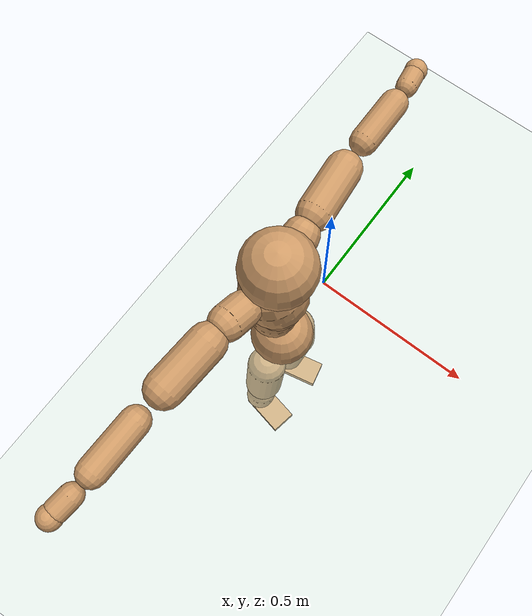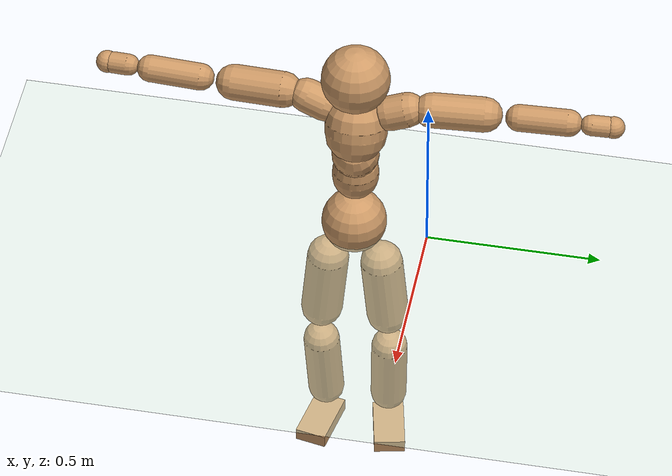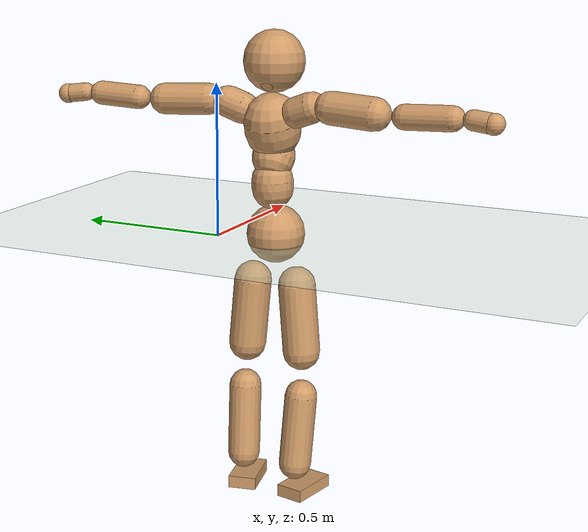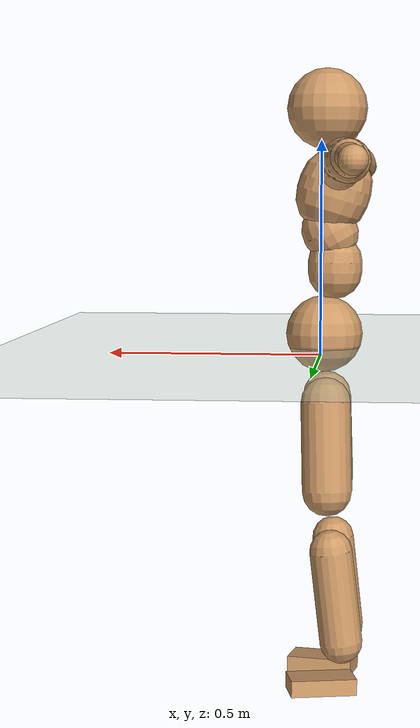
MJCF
<mujoco model="humanoid">
  <compiler coordinate="local"/>
  <default>
    <joint damping="0.0" armature="0.01" stiffness="0.0" limited="true"/>
    <geom conaffinity="1" condim="3" contype="7" margin="0.001" rgba="0.8 0.6 .4 1"/>
  </default>
  <asset>
    <texture type="skybox" builtin="gradient" rgb1=".4 .5 .6" rgb2="0 0 0" width="100" height="100"/>
    <texture builtin="flat" height="1278" mark="cross" markrgb="1 1 1" name="texgeom" random="0.01" rgb1="0.8 0.6 0.4" rgb2="0.8 0.6 0.4" type="cube" width="127"/>
    <texture builtin="checker" height="100" name="texplane" rgb1="0 0 0" rgb2="0.8 0.8 0.8" type="2d" width="100"/>
    <material name="MatPlane" reflectance="0.5" shininess="1" specular="1" texrepeat="60 60" texture="texplane"/>
    <material name="geom" texture="texgeom" texuniform="true"/>
  </asset>
  <worldbody>
    <light cutoff="100" diffuse="1 1 1" dir="-0 0 -1.3" directional="true" exponent="1" pos="0 0 1.3" specular=".1 .1 .1"/>
    <geom conaffinity="1" condim="3" name="floor" pos="0 0 0" rgba="0.8 0.9 0.8 1" size="100 100 .2" type="plane" material="MatPlane"/>
    <body name="Pelvis" pos="-0.0003 -0.2111 0.0317">
      <freejoint name="Pelvis"/>
      <geom type="sphere" contype="1" conaffinity="1" density="500" size="0.0941" pos="0.0000 0.0000 0.0000" name="Pelvis"/>
      <body name="L_Hip" pos="-0.0055 0.0727 -0.0894">
        <joint name="L_Hip_x" type="hinge" pos="0 0 0" axis="1 0 0" stiffness="800" damping="80" armature="0.02" range="-180.0000 180.0000"/>
        <joint name="L_Hip_y" type="hinge" pos="0 0 0" axis="0 1 0" stiffness="800" damping="80" armature="0.02" range="-180.0000 180.0000"/>
        <joint name="L_Hip_z" type="hinge" pos="0 0 0" axis="0 0 1" stiffness="800" damping="80" armature="0.02" range="-180.0000 180.0000"/>
        <geom type="capsule" contype="1" conaffinity="1" density="500" fromto="-0.0017 0.0059 -0.0721 -0.0070 0.0237 -0.2882" size="0.0612" name="L_Hip"/>
        <body name="L_Knee" pos="-0.0087 0.0296 -0.3603">
          <joint name="L_Knee_x" type="hinge" pos="0 0 0" axis="1 0 0" stiffness="800" damping="80" armature="0.02" range="-180.0000 180.0000"/>
          <joint name="L_Knee_y" type="hinge" pos="0 0 0" axis="0 1 0" stiffness="800" damping="80" armature="0.02" range="-180.0000 180.0000"/>
          <joint name="L_Knee_z" type="hinge" pos="0 0 0" axis="0 0 1" stiffness="800" damping="80" armature="0.02" range="-180.0000 180.0000"/>
          <geom type="capsule" contype="1" conaffinity="1" density="500" fromto="-0.0087 -0.0023 -0.0762 -0.0349 -0.0091 -0.3046" size="0.0527" name="L_Knee"/>
          <body name="L_Ankle" pos="-0.0436 -0.0114 -0.3808">
            <joint name="L_Ankle_x" type="hinge" pos="0 0 0" axis="1 0 0" stiffness="800" damping="80" armature="0.02" range="-180.0000 180.0000"/>
            <joint name="L_Ankle_y" type="hinge" pos="0 0 0" axis="0 1 0" stiffness="800" damping="80" armature="0.02" range="-180.0000 180.0000"/>
            <joint name="L_Ankle_z" type="hinge" pos="0 0 0" axis="0 0 1" stiffness="800" damping="80" armature="0.02" range="-180.0000 180.0000"/>
            <geom type="box" contype="1" conaffinity="1" density="500" pos="0.0567 0.0122 -0.0273" size="0.081 0.0457 0.0202" quat="0.9944 0.0000 0.0000 0.1053" name="L_Ankle"/>
            <body name="L_Toe" pos="0.1135 0.0243 -0.0546">
              <joint name="L_Toe_x" type="hinge" pos="0 0 0" axis="1 0 0" stiffness="500" damping="50" armature="0.02" range="-180.0000 180.0000"/>
              <joint name="L_Toe_y" type="hinge" pos="0 0 0" axis="0 1 0" stiffness="500" damping="50" armature="0.02" range="-180.0000 180.0000"/>
              <joint name="L_Toe_z" type="hinge" pos="0 0 0" axis="0 0 1" stiffness="500" damping="50" armature="0.02" range="-180.0000 180.0000"/>
              <geom type="box" contype="1" conaffinity="1" density="500" pos="0.0000 0.0000 0.0267" size="0.001 0.0023 0.001" quat="0.9937 0.0000 0.0000 0.1118" name="L_Toe"/>
            </body>
          </body>
        </body>
      </body>
      <body name="R_Hip" pos="-0.0022 -0.0704 -0.0891">
        <joint name="R_Hip_x" type="hinge" pos="0 0 0" axis="1 0 0" stiffness="800" damping="80" armature="0.02" range="-180.0000 180.0000"/>
        <joint name="R_Hip_y" type="hinge" pos="0 0 0" axis="0 1 0" stiffness="800" damping="80" armature="0.02" range="-180.0000 180.0000"/>
        <joint name="R_Hip_z" type="hinge" pos="0 0 0" axis="0 0 1" stiffness="800" damping="80" armature="0.02" range="-180.0000 180.0000"/>
        <geom type="capsule" contype="1" conaffinity="1" density="500" fromto="-0.0021 -0.0071 -0.0734 -0.0085 -0.0283 -0.2934" size="0.0605" name="R_Hip"/>
        <body name="R_Knee" pos="-0.0106 -0.0353 -0.3668">
          <joint name="R_Knee_x" type="hinge" pos="0 0 0" axis="1 0 0" stiffness="800" damping="80" armature="0.02" range="-180.0000 180.0000"/>
          <joint name="R_Knee_y" type="hinge" pos="0 0 0" axis="0 1 0" stiffness="800" damping="80" armature="0.02" range="-180.0000 180.0000"/>
          <joint name="R_Knee_z" type="hinge" pos="0 0 0" axis="0 0 1" stiffness="800" damping="80" armature="0.02" range="-180.0000 180.0000"/>
          <geom type="capsule" contype="1" conaffinity="1" density="500" fromto="-0.0084 0.0028 -0.0764 -0.0337 0.0111 -0.3057" size="0.0529" name="R_Knee"/>
          <body name="R_Ankle" pos="-0.0421 0.0138 -0.3821">
            <joint name="R_Ankle_x" type="hinge" pos="0 0 0" axis="1 0 0" stiffness="800" damping="80" armature="0.02" range="-180.0000 180.0000"/>
            <joint name="R_Ankle_y" type="hinge" pos="0 0 0" axis="0 1 0" stiffness="800" damping="80" armature="0.02" range="-180.0000 180.0000"/>
            <joint name="R_Ankle_z" type="hinge" pos="0 0 0" axis="0 0 1" stiffness="800" damping="80" armature="0.02" range="-180.0000 180.0000"/>
            <geom type="box" contype="1" conaffinity="1" density="500" pos="0.0586 -0.0112 -0.0233" size="0.0825 0.0458 0.02" quat="0.9955 0.0000 0.0000 -0.0944" name="R_Ankle"/>
            <body name="R_Toe" pos="0.1172 -0.0224 -0.0466">
              <joint name="R_Toe_x" type="hinge" pos="0 0 0" axis="1 0 0" stiffness="500" damping="50" armature="0.02" range="-180.0000 180.0000"/>
              <joint name="R_Toe_y" type="hinge" pos="0 0 0" axis="0 1 0" stiffness="500" damping="50" armature="0.02" range="-180.0000 180.0000"/>
              <joint name="R_Toe_z" type="hinge" pos="0 0 0" axis="0 0 1" stiffness="500" damping="50" armature="0.02" range="-180.0000 180.0000"/>
              <geom type="box" contype="1" conaffinity="1" density="500" pos="0.0000 0.0000 0.0248" size="0.0009 0.0023 0.0011" quat="0.9964 0.0000 0.0000 -0.0847" name="R_Toe"/>
            </body>
          </body>
        </body>
      </body>
      <body name="Torso" pos="-0.0244 -0.002 0.1032">
        <joint name="Torso_x" type="hinge" pos="0 0 0" axis="1 0 0" stiffness="1000" damping="100" armature="0.02" range="-180.0000 180.0000"/>
        <joint name="Torso_y" type="hinge" pos="0 0 0" axis="0 1 0" stiffness="1000" damping="100" armature="0.02" range="-180.0000 180.0000"/>
        <joint name="Torso_z" type="hinge" pos="0 0 0" axis="0 0 1" stiffness="1000" damping="100" armature="0.02" range="-180.0000 180.0000"/>
        <geom type="capsule" contype="1" conaffinity="1" density="500" fromto="-0.0013 0.0018 0.0740 -0.0009 0.0012 0.0493" size="0.066588" name="Torso"/>
        <body name="Spine" pos="-0.0021 0.003 0.1233">
          <joint name="Spine_x" type="hinge" pos="0 0 0" axis="1 0 0" stiffness="1000" damping="100" armature="0.02" range="-180.0000 180.0000"/>
          <joint name="Spine_y" type="hinge" pos="0 0 0" axis="0 1 0" stiffness="1000" damping="100" armature="0.02" range="-180.0000 180.0000"/>
          <joint name="Spine_z" type="hinge" pos="0 0 0" axis="0 0 1" stiffness="1000" damping="100" armature="0.02" range="-180.0000 180.0000"/>
          <geom type="capsule" contype="1" conaffinity="1" density="500" fromto="0.0166 0.0010 0.0292 0.0111 0.0007 0.0195" size="0.067704" name="Spine"/>
          <body name="Chest" pos="0.0277 0.0017 0.0487">
            <joint name="Chest_x" type="hinge" pos="0 0 0" axis="1 0 0" stiffness="1000" damping="100" armature="0.02" range="-180.0000 180.0000"/>
            <joint name="Chest_y" type="hinge" pos="0 0 0" axis="0 1 0" stiffness="1000" damping="100" armature="0.02" range="-180.0000 180.0000"/>
            <joint name="Chest_z" type="hinge" pos="0 0 0" axis="0 0 1" stiffness="1000" damping="100" armature="0.02" range="-180.0000 180.0000"/>
            <geom type="capsule" contype="1" conaffinity="1" density="500" fromto="-0.0277 -0.0008 0.0902 -0.0184 -0.0006 0.0602" size="0.089466" name="Chest"/>
            <body name="Neck" pos="-0.055 -0.0021 0.2126">
              <joint name="Neck_x" type="hinge" pos="0 0 0" axis="1 0 0" stiffness="500" damping="50" armature="0.02" range="-180.0000 180.0000"/>
              <joint name="Neck_y" type="hinge" pos="0 0 0" axis="0 1 0" stiffness="500" damping="50" armature="0.02" range="-180.0000 180.0000"/>
              <joint name="Neck_z" type="hinge" pos="0 0 0" axis="0 0 1" stiffness="500" damping="50" armature="0.02" range="-180.0000 180.0000"/>
              <geom type="capsule" contype="1" conaffinity="1" density="500" fromto="0.0098 0.0007 0.0123 0.0393 0.0028 0.0492" size="0.038223" name="Neck"/>
              <body name="Head" pos="0.0491 0.0035 0.0614">
                <joint name="Head_x" type="hinge" pos="0 0 0" axis="1 0 0" stiffness="500" damping="50" armature="0.02" range="-180.0000 180.0000"/>
                <joint name="Head_y" type="hinge" pos="0 0 0" axis="0 1 0" stiffness="500" damping="50" armature="0.02" range="-180.0000 180.0000"/>
                <joint name="Head_z" type="hinge" pos="0 0 0" axis="0 0 1" stiffness="500" damping="50" armature="0.02" range="-180.0000 180.0000"/>
                <geom type="sphere" contype="1" conaffinity="1" density="500" size="0.0979" pos="0.0000 0.0000 0.0000" name="Head"/>
              </body>
            </body>
            <body name="L_Thorax" pos="-0.0393 0.0751 0.1202">
              <joint name="L_Thorax_x" type="hinge" pos="0 0 0" axis="1 0 0" stiffness="500" damping="50" armature="0.02" range="-180.0000 180.0000"/>
              <joint name="L_Thorax_y" type="hinge" pos="0 0 0" axis="0 1 0" stiffness="500" damping="50" armature="0.02" range="-180.0000 180.0000"/>
              <joint name="L_Thorax_z" type="hinge" pos="0 0 0" axis="0 0 1" stiffness="500" damping="50" armature="0.02" range="-180.0000 180.0000"/>
              <geom type="capsule" contype="1" conaffinity="1" density="500" fromto="-0.0014 0.0169 0.0061 -0.0058 0.0677 0.0245" size="0.0499" name="L_Thorax"/>
              <body name="L_Shoulder" pos="-0.0072 0.0846 0.0306">
                <joint name="L_Shoulder_x" type="hinge" pos="0 0 0" axis="1 0 0" stiffness="500" damping="50" armature="0.02" range="-720.0000 720.0000"/>
                <joint name="L_Shoulder_y" type="hinge" pos="0 0 0" axis="0 1 0" stiffness="500" damping="50" armature="0.02" range="-720.0000 720.0000"/>
                <joint name="L_Shoulder_z" type="hinge" pos="0 0 0" axis="0 0 1" stiffness="500" damping="50" armature="0.02" range="-720.0000 720.0000"/>
                <geom type="capsule" contype="1" conaffinity="1" density="500" fromto="-0.0052 0.0495 -0.0020 -0.0208 0.1980 -0.0078" size="0.0503" name="L_Shoulder"/>
                <body name="L_Elbow" pos="-0.026 0.2475 -0.0098">
                  <joint name="L_Elbow_x" type="hinge" pos="0 0 0" axis="1 0 0" stiffness="500" damping="50" armature="0.02" range="-720.0000 720.0000"/>
                  <joint name="L_Elbow_y" type="hinge" pos="0 0 0" axis="0 1 0" stiffness="500" damping="50" armature="0.02" range="-720.0000 720.0000"/>
                  <joint name="L_Elbow_z" type="hinge" pos="0 0 0" axis="0 0 1" stiffness="500" damping="50" armature="0.02" range="-720.0000 720.0000"/>
                  <geom type="capsule" contype="1" conaffinity="1" density="500" fromto="0.0000 0.0467 0.0017 0.0000 0.1869 0.0069" size="0.0388" name="L_Elbow"/>
                  <body name="L_Wrist" pos="0.0001 0.2337 0.0087">
                    <joint name="L_Wrist_x" type="hinge" pos="0 0 0" axis="1 0 0" stiffness="300" damping="30" armature="0.02" range="-180.0000 180.0000"/>
                    <joint name="L_Wrist_y" type="hinge" pos="0 0 0" axis="0 1 0" stiffness="300" damping="30" armature="0.02" range="-180.0000 180.0000"/>
                    <joint name="L_Wrist_z" type="hinge" pos="0 0 0" axis="0 0 1" stiffness="300" damping="30" armature="0.02" range="-180.0000 180.0000"/>
                    <geom type="capsule" contype="1" conaffinity="1" density="500" fromto="-0.0026 0.0157 -0.0019 -0.0104 0.0629 -0.0076" size="0.0298" name="L_Wrist"/>
                    <body name="L_Hand" pos="-0.013 0.0786 -0.0095">
                      <joint name="L_Hand_x" type="hinge" pos="0 0 0" axis="1 0 0" stiffness="300" damping="30" armature="0.02" range="-180.0000 180.0000"/>
                      <joint name="L_Hand_y" type="hinge" pos="0 0 0" axis="0 1 0" stiffness="300" damping="30" armature="0.02" range="-180.0000 180.0000"/>
                      <joint name="L_Hand_z" type="hinge" pos="0 0 0" axis="0 0 1" stiffness="300" damping="30" armature="0.02" range="-180.0000 180.0000"/>
                      <geom type="sphere" contype="1" conaffinity="1" density="500" size="0.0317" pos="0.0000 0.0000 0.0000" name="L_Hand"/>
                    </body>
                  </body>
                </body>
              </body>
            </body>
            <body name="R_Thorax" pos="-0.0441 -0.0772 0.1184">
              <joint name="R_Thorax_x" type="hinge" pos="0 0 0" axis="1 0 0" stiffness="500" damping="50" armature="0.02" range="-180.0000 180.0000"/>
              <joint name="R_Thorax_y" type="hinge" pos="0 0 0" axis="0 1 0" stiffness="500" damping="50" armature="0.02" range="-180.0000 180.0000"/>
              <joint name="R_Thorax_z" type="hinge" pos="0 0 0" axis="0 0 1" stiffness="500" damping="50" armature="0.02" range="-180.0000 180.0000"/>
              <geom type="capsule" contype="1" conaffinity="1" density="500" fromto="-0.0019 -0.0176 0.0065 -0.0076 -0.0704 0.0259" size="0.049" name="R_Thorax"/>
              <body name="R_Shoulder" pos="-0.0095 -0.088 0.0324">
                <joint name="R_Shoulder_x" type="hinge" pos="0 0 0" axis="1 0 0" stiffness="500" damping="50" armature="0.02" range="-720.0000 720.0000"/>
                <joint name="R_Shoulder_y" type="hinge" pos="0 0 0" axis="0 1 0" stiffness="500" damping="50" armature="0.02" range="-720.0000 720.0000"/>
                <joint name="R_Shoulder_z" type="hinge" pos="0 0 0" axis="0 0 1" stiffness="500" damping="50" armature="0.02" range="-720.0000 720.0000"/>
                <geom type="capsule" contype="1" conaffinity="1" density="500" fromto="-0.0040 -0.0486 -0.0025 -0.0158 -0.1943 -0.0101" size="0.0517" name="R_Shoulder"/>
                <body name="R_Elbow" pos="-0.0198 -0.2429 -0.0126">
                  <joint name="R_Elbow_x" type="hinge" pos="0 0 0" axis="1 0 0" stiffness="500" damping="50" armature="0.02" range="-720.0000 720.0000"/>
                  <joint name="R_Elbow_y" type="hinge" pos="0 0 0" axis="0 1 0" stiffness="500" damping="50" armature="0.02" range="-720.0000 720.0000"/>
                  <joint name="R_Elbow_z" type="hinge" pos="0 0 0" axis="0 0 1" stiffness="500" damping="50" armature="0.02" range="-720.0000 720.0000"/>
                  <geom type="capsule" contype="1" conaffinity="1" density="500" fromto="-0.0007 -0.0483 0.0018 -0.0028 -0.1932 0.0073" size="0.039" name="R_Elbow"/>
                  <body name="R_Wrist" pos="-0.0035 -0.2415 0.0091">
                    <joint name="R_Wrist_x" type="hinge" pos="0 0 0" axis="1 0 0" stiffness="300" damping="30" armature="0.02" range="-180.0000 180.0000"/>
                    <joint name="R_Wrist_y" type="hinge" pos="0 0 0" axis="0 1 0" stiffness="300" damping="30" armature="0.02" range="-180.0000 180.0000"/>
                    <joint name="R_Wrist_z" type="hinge" pos="0 0 0" axis="0 0 1" stiffness="300" damping="30" armature="0.02" range="-180.0000 180.0000"/>
                    <geom type="capsule" contype="1" conaffinity="1" density="500" fromto="-0.0021 -0.0159 -0.0014 -0.0083 -0.0637 -0.0057" size="0.0307" name="R_Wrist"/>
                    <body name="R_Hand" pos="-0.0103 -0.0796 -0.0072">
                      <joint name="R_Hand_x" type="hinge" pos="0 0 0" axis="1 0 0" stiffness="300" damping="30" armature="0.02" range="-180.0000 180.0000"/>
                      <joint name="R_Hand_y" type="hinge" pos="0 0 0" axis="0 1 0" stiffness="300" damping="30" armature="0.02" range="-180.0000 180.0000"/>
                      <joint name="R_Hand_z" type="hinge" pos="0 0 0" axis="0 0 1" stiffness="300" damping="30" armature="0.02" range="-180.0000 180.0000"/>
                      <geom type="sphere" contype="1" conaffinity="1" density="500" size="0.0321" pos="0.0000 0.0000 0.0000" name="R_Hand"/>
                    </body>
                  </body>
                </body>
              </body>
            </body>
          </body>
        </body>
      </body>
    </body>
  </worldbody>
  <actuator>
    <motor name="L_Hip_x" joint="L_Hip_x" gear="500"/>
    <motor name="L_Hip_y" joint="L_Hip_y" gear="500"/>
    <motor name="L_Hip_z" joint="L_Hip_z" gear="500"/>
    <motor name="L_Knee_x" joint="L_Knee_x" gear="500"/>
    <motor name="L_Knee_y" joint="L_Knee_y" gear="500"/>
    <motor name="L_Knee_z" joint="L_Knee_z" gear="500"/>
    <motor name="L_Ankle_x" joint="L_Ankle_x" gear="500"/>
    <motor name="L_Ankle_y" joint="L_Ankle_y" gear="500"/>
    <motor name="L_Ankle_z" joint="L_Ankle_z" gear="500"/>
    <motor name="L_Toe_x" joint="L_Toe_x" gear="500"/>
    <motor name="L_Toe_y" joint="L_Toe_y" gear="500"/>
    <motor name="L_Toe_z" joint="L_Toe_z" gear="500"/>
    <motor name="R_Hip_x" joint="R_Hip_x" gear="500"/>
    <motor name="R_Hip_y" joint="R_Hip_y" gear="500"/>
    <motor name="R_Hip_z" joint="R_Hip_z" gear="500"/>
    <motor name="R_Knee_x" joint="R_Knee_x" gear="500"/>
    <motor name="R_Knee_y" joint="R_Knee_y" gear="500"/>
    <motor name="R_Knee_z" joint="R_Knee_z" gear="500"/>
    <motor name="R_Ankle_x" joint="R_Ankle_x" gear="500"/>
    <motor name="R_Ankle_y" joint="R_Ankle_y" gear="500"/>
    <motor name="R_Ankle_z" joint="R_Ankle_z" gear="500"/>
    <motor name="R_Toe_x" joint="R_Toe_x" gear="500"/>
    <motor name="R_Toe_y" joint="R_Toe_y" gear="500"/>
    <motor name="R_Toe_z" joint="R_Toe_z" gear="500"/>
    <motor name="Torso_x" joint="Torso_x" gear="500"/>
    <motor name="Torso_y" joint="Torso_y" gear="500"/>
    <motor name="Torso_z" joint="Torso_z" gear="500"/>
    <motor name="Spine_x" joint="Spine_x" gear="500"/>
    <motor name="Spine_y" joint="Spine_y" gear="500"/>
    <motor name="Spine_z" joint="Spine_z" gear="500"/>
    <motor name="Chest_x" joint="Chest_x" gear="500"/>
    <motor name="Chest_y" joint="Chest_y" gear="500"/>
    <motor name="Chest_z" joint="Chest_z" gear="500"/>
    <motor name="Neck_x" joint="Neck_x" gear="500"/>
    <motor name="Neck_y" joint="Neck_y" gear="500"/>
    <motor name="Neck_z" joint="Neck_z" gear="500"/>
    <motor name="Head_x" joint="Head_x" gear="500"/>
    <motor name="Head_y" joint="Head_y" gear="500"/>
    <motor name="Head_z" joint="Head_z" gear="500"/>
    <motor name="L_Thorax_x" joint="L_Thorax_x" gear="500"/>
    <motor name="L_Thorax_y" joint="L_Thorax_y" gear="500"/>
    <motor name="L_Thorax_z" joint="L_Thorax_z" gear="500"/>
    <motor name="L_Shoulder_x" joint="L_Shoulder_x" gear="500"/>
    <motor name="L_Shoulder_y" joint="L_Shoulder_y" gear="500"/>
    <motor name="L_Shoulder_z" joint="L_Shoulder_z" gear="500"/>
    <motor name="L_Elbow_x" joint="L_Elbow_x" gear="500"/>
    <motor name="L_Elbow_y" joint="L_Elbow_y" gear="500"/>
    <motor name="L_Elbow_z" joint="L_Elbow_z" gear="500"/>
    <motor name="L_Wrist_x" joint="L_Wrist_x" gear="500"/>
    <motor name="L_Wrist_y" joint="L_Wrist_y" gear="500"/>
    <motor name="L_Wrist_z" joint="L_Wrist_z" gear="500"/>
    <motor name="L_Hand_x" joint="L_Hand_x" gear="500"/>
    <motor name="L_Hand_y" joint="L_Hand_y" gear="500"/>
    <motor name="L_Hand_z" joint="L_Hand_z" gear="500"/>
    <motor name="R_Thorax_x" joint="R_Thorax_x" gear="500"/>
    <motor name="R_Thorax_y" joint="R_Thorax_y" gear="500"/>
    <motor name="R_Thorax_z" joint="R_Thorax_z" gear="500"/>
    <motor name="R_Shoulder_x" joint="R_Shoulder_x" gear="500"/>
    <motor name="R_Shoulder_y" joint="R_Shoulder_y" gear="500"/>
    <motor name="R_Shoulder_z" joint="R_Shoulder_z" gear="500"/>
    <motor name="R_Elbow_x" joint="R_Elbow_x" gear="500"/>
    <motor name="R_Elbow_y" joint="R_Elbow_y" gear="500"/>
    <motor name="R_Elbow_z" joint="R_Elbow_z" gear="500"/>
    <motor name="R_Wrist_x" joint="R_Wrist_x" gear="500"/>
    <motor name="R_Wrist_y" joint="R_Wrist_y" gear="500"/>
    <motor name="R_Wrist_z" joint="R_Wrist_z" gear="500"/>
    <motor name="R_Hand_x" joint="R_Hand_x" gear="500"/>
    <motor name="R_Hand_y" joint="R_Hand_y" gear="500"/>
    <motor name="R_Hand_z" joint="R_Hand_z" gear="500"/>
  </actuator>
  <contact>
    <exclude body1="Torso" body2="Chest"/>
    <exclude body1="Head" body2="Chest"/>
    <exclude body1="R_Knee" body2="R_Toe"/>
    <exclude body1="R_Knee" body2="L_Ankle"/>
    <exclude body1="R_Knee" body2="L_Toe"/>
    <exclude body1="L_Knee" body2="L_Toe"/>
    <exclude body1="L_Knee" body2="R_Ankle"/>
    <exclude body1="L_Knee" body2="R_Toe"/>
    <exclude body1="L_Shoulder" body2="Chest"/>
    <exclude body1="R_Shoulder" body2="Chest"/>
  </contact>
  <sensor/>
  <size njmax="700" nconmax="700"/>
</mujoco>
